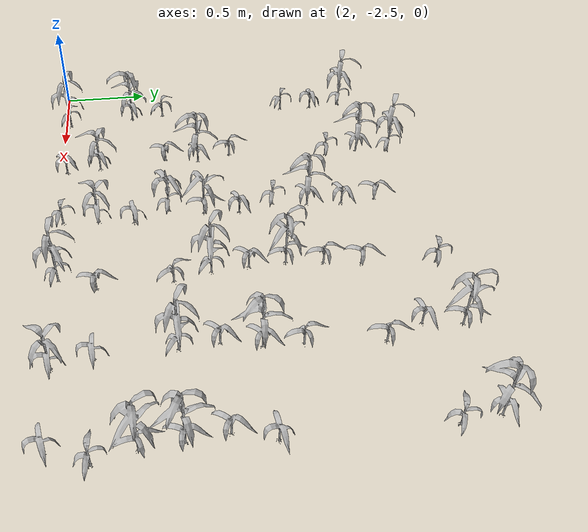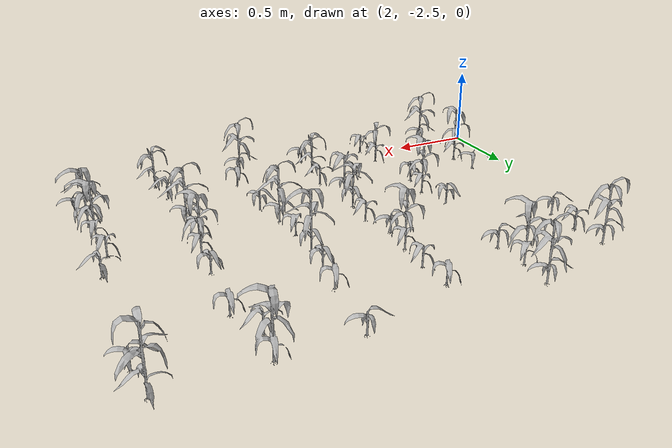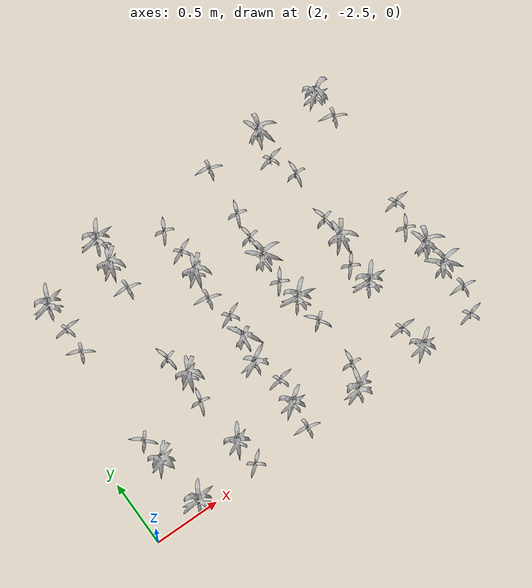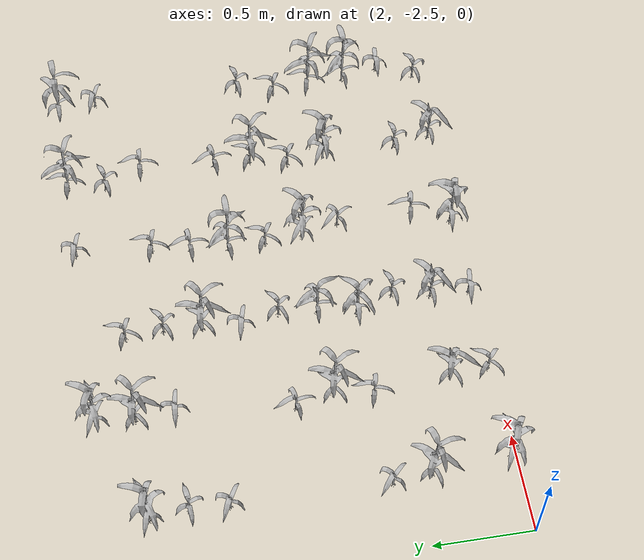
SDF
<sdf version="1.7">
 <world name="default">
  <model name="maize_2.3745121993031595_-2.46">
   <static>1</static>
   <link name="link">
    <inertial>
     <mass>0.2</mass>
     <inertia>
      <ixx>0.166667</ixx>
      <ixy>0</ixy>
      <ixz>0</ixz>
      <iyy>0.166667</iyy>
      <iyz>0</iyz>
      <izz>0.166667</izz>
     </inertia>
    </inertial>
    <collision name="collision">
     <geometry><mesh><uri>model://corn_5/meshes/corn.dae</uri><scale>0.25 0.25 0.25</scale></mesh></geometry>
     <surface>
      <friction><ode><mu>0</mu><mu2>0</mu2></ode></friction>
      <contact><ode><kp>0</kp><kd>0</kd><max_vel>0</max_vel><min_depth>0.002</min_depth></ode></contact>
     </surface>
    </collision>
    <visual name="visual">
     <geometry><mesh><uri>model://corn_5/meshes/corn.dae</uri><scale>0.25 0.25 0.25</scale></mesh></geometry>
    </visual>
    <velocity_decay><linear>0</linear><angular>0</angular></velocity_decay>
   </link>
   <pose>2.37451 -2.46 0.05 0 -0 2.75902</pose>
  </model>
  <model name="maize_2.337009474210957_-2.07">
   <static>1</static>
   <link name="link">
    <inertial>
     <mass>0.2</mass>
     <inertia>
      <ixx>0.166667</ixx>
      <ixy>0</ixy>
      <ixz>0</ixz>
      <iyy>0.166667</iyy>
      <iyz>0</iyz>
      <izz>0.166667</izz>
     </inertia>
    </inertial>
    <collision name="collision">
     <geometry><mesh><uri>model://corn_5/meshes/corn.dae</uri><scale>0.25 0.25 0.25</scale></mesh></geometry>
     <surface>
      <friction><ode><mu>0</mu><mu2>0</mu2></ode></friction>
      <contact><ode><kp>0</kp><kd>0</kd><max_vel>0</max_vel><min_depth>0.002</min_depth></ode></contact>
     </surface>
    </collision>
    <visual name="visual">
     <geometry><mesh><uri>model://corn_5/meshes/corn.dae</uri><scale>0.25 0.25 0.25</scale></mesh></geometry>
    </visual>
    <velocity_decay><linear>0</linear><angular>0</angular></velocity_decay>
   </link>
   <pose>2.33701 -2.07 0.05 0 -0 0.359599</pose>
  </model>
  <model name="maize_2.3219874058990166_-1.8749999999999996">
   <static>1</static>
   <link name="link">
    <inertial>
     <mass>0.2</mass>
     <inertia>
      <ixx>0.166667</ixx>
      <ixy>0</ixy>
      <ixz>0</ixz>
      <iyy>0.166667</iyy>
      <iyz>0</iyz>
      <izz>0.166667</izz>
     </inertia>
    </inertial>
    <collision name="collision">
     <geometry><mesh><uri>model://corn_3/meshes/corn.dae</uri><scale>0.25 0.25 0.25</scale></mesh></geometry>
     <surface>
      <friction><ode><mu>0</mu><mu2>0</mu2></ode></friction>
      <contact><ode><kp>0</kp><kd>0</kd><max_vel>0</max_vel><min_depth>0.002</min_depth></ode></contact>
     </surface>
    </collision>
    <visual name="visual">
     <geometry><mesh><uri>model://corn_3/meshes/corn.dae</uri><scale>0.25 0.25 0.25</scale></mesh></geometry>
    </visual>
    <velocity_decay><linear>0</linear><angular>0</angular></velocity_decay>
   </link>
   <pose>2.32199 -1.875 0.05 0 -0 2.43968</pose>
  </model>
  <model name="maize_2.3269847892570503_-1.0949999999999998">
   <static>1</static>
   <link name="link">
    <inertial>
     <mass>0.2</mass>
     <inertia>
      <ixx>0.166667</ixx>
      <ixy>0</ixy>
      <ixz>0</ixz>
      <iyy>0.166667</iyy>
      <iyz>0</iyz>
      <izz>0.166667</izz>
     </inertia>
    </inertial>
    <collision name="collision">
     <geometry><mesh><uri>model://corn_3/meshes/corn.dae</uri><scale>0.25 0.25 0.25</scale></mesh></geometry>
     <surface>
      <friction><ode><mu>0</mu><mu2>0</mu2></ode></friction>
      <contact><ode><kp>0</kp><kd>0</kd><max_vel>0</max_vel><min_depth>0.002</min_depth></ode></contact>
     </surface>
    </collision>
    <visual name="visual">
     <geometry><mesh><uri>model://corn_3/meshes/corn.dae</uri><scale>0.25 0.25 0.25</scale></mesh></geometry>
    </visual>
    <velocity_decay><linear>0</linear><angular>0</angular></velocity_decay>
   </link>
   <pose>2.32699 -1.095 0.05 0 -0 2.72049</pose>
  </model>
  <model name="maize_2.3359403123801172_-0.8999999999999995">
   <static>1</static>
   <link name="link">
    <inertial>
     <mass>0.2</mass>
     <inertia>
      <ixx>0.166667</ixx>
      <ixy>0</ixy>
      <ixz>0</ixz>
      <iyy>0.166667</iyy>
      <iyz>0</iyz>
      <izz>0.166667</izz>
     </inertia>
    </inertial>
    <collision name="collision">
     <geometry><mesh><uri>model://corn_3/meshes/corn.dae</uri><scale>0.25 0.25 0.25</scale></mesh></geometry>
     <surface>
      <friction><ode><mu>0</mu><mu2>0</mu2></ode></friction>
      <contact><ode><kp>0</kp><kd>0</kd><max_vel>0</max_vel><min_depth>0.002</min_depth></ode></contact>
     </surface>
    </collision>
    <visual name="visual">
     <geometry><mesh><uri>model://corn_3/meshes/corn.dae</uri><scale>0.25 0.25 0.25</scale></mesh></geometry>
    </visual>
    <velocity_decay><linear>0</linear><angular>0</angular></velocity_decay>
   </link>
   <pose>2.33594 -0.9 0.05 0 -0 0.162147</pose>
  </model>
  <model name="maize_2.319808523388343_-0.7050000000000001">
   <static>1</static>
   <link name="link">
    <inertial>
     <mass>0.2</mass>
     <inertia>
      <ixx>0.166667</ixx>
      <ixy>0</ixy>
      <ixz>0</ixz>
      <iyy>0.166667</iyy>
      <iyz>0</iyz>
      <izz>0.166667</izz>
     </inertia>
    </inertial>
    <collision name="collision">
     <geometry><mesh><uri>model://corn_5/meshes/corn.dae</uri><scale>0.25 0.25 0.25</scale></mesh></geometry>
     <surface>
      <friction><ode><mu>0</mu><mu2>0</mu2></ode></friction>
      <contact><ode><kp>0</kp><kd>0</kd><max_vel>0</max_vel><min_depth>0.002</min_depth></ode></contact>
     </surface>
    </collision>
    <visual name="visual">
     <geometry><mesh><uri>model://corn_5/meshes/corn.dae</uri><scale>0.25 0.25 0.25</scale></mesh></geometry>
    </visual>
    <velocity_decay><linear>0</linear><angular>0</angular></velocity_decay>
   </link>
   <pose>2.31981 -0.705 0.05 0 -0 2.89362</pose>
  </model>
  <model name="maize_2.859706268660767_-2.46">
   <static>1</static>
   <link name="link">
    <inertial>
     <mass>0.2</mass>
     <inertia>
      <ixx>0.166667</ixx>
      <ixy>0</ixy>
      <ixz>0</ixz>
      <iyy>0.166667</iyy>
      <iyz>0</iyz>
      <izz>0.166667</izz>
     </inertia>
    </inertial>
    <collision name="collision">
     <geometry><mesh><uri>model://corn_3/meshes/corn.dae</uri><scale>0.25 0.25 0.25</scale></mesh></geometry>
     <surface>
      <friction><ode><mu>0</mu><mu2>0</mu2></ode></friction>
      <contact><ode><kp>0</kp><kd>0</kd><max_vel>0</max_vel><min_depth>0.002</min_depth></ode></contact>
     </surface>
    </collision>
    <visual name="visual">
     <geometry><mesh><uri>model://corn_3/meshes/corn.dae</uri><scale>0.25 0.25 0.25</scale></mesh></geometry>
    </visual>
    <velocity_decay><linear>0</linear><angular>0</angular></velocity_decay>
   </link>
   <pose>2.85971 -2.46 0.05 0 -0 0.762967</pose>
  </model>
  <model name="maize_2.8430013032769814_-2.2649999999999997">
   <static>1</static>
   <link name="link">
    <inertial>
     <mass>0.2</mass>
     <inertia>
      <ixx>0.166667</ixx>
      <ixy>0</ixy>
      <ixz>0</ixz>
      <iyy>0.166667</iyy>
      <iyz>0</iyz>
      <izz>0.166667</izz>
     </inertia>
    </inertial>
    <collision name="collision">
     <geometry><mesh><uri>model://corn_4/meshes/corn.dae</uri><scale>0.25 0.25 0.25</scale></mesh></geometry>
     <surface>
      <friction><ode><mu>0</mu><mu2>0</mu2></ode></friction>
      <contact><ode><kp>0</kp><kd>0</kd><max_vel>0</max_vel><min_depth>0.002</min_depth></ode></contact>
     </surface>
    </collision>
    <visual name="visual">
     <geometry><mesh><uri>model://corn_4/meshes/corn.dae</uri><scale>0.25 0.25 0.25</scale></mesh></geometry>
    </visual>
    <velocity_decay><linear>0</linear><angular>0</angular></velocity_decay>
   </link>
   <pose>2.843 -2.265 0.05 0 -0 0.492577</pose>
  </model>
  <model name="maize_2.801666692448108_-1.8749999999999996">
   <static>1</static>
   <link name="link">
    <inertial>
     <mass>0.2</mass>
     <inertia>
      <ixx>0.166667</ixx>
      <ixy>0</ixy>
      <ixz>0</ixz>
      <iyy>0.166667</iyy>
      <iyz>0</iyz>
      <izz>0.166667</izz>
     </inertia>
    </inertial>
    <collision name="collision">
     <geometry><mesh><uri>model://corn_3/meshes/corn.dae</uri><scale>0.25 0.25 0.25</scale></mesh></geometry>
     <surface>
      <friction><ode><mu>0</mu><mu2>0</mu2></ode></friction>
      <contact><ode><kp>0</kp><kd>0</kd><max_vel>0</max_vel><min_depth>0.002</min_depth></ode></contact>
     </surface>
    </collision>
    <visual name="visual">
     <geometry><mesh><uri>model://corn_3/meshes/corn.dae</uri><scale>0.25 0.25 0.25</scale></mesh></geometry>
    </visual>
    <velocity_decay><linear>0</linear><angular>0</angular></velocity_decay>
   </link>
   <pose>2.80167 -1.875 0.05 0 -0 1.31832</pose>
  </model>
  <model name="maize_2.838154069388238_-1.6799999999999997">
   <static>1</static>
   <link name="link">
    <inertial>
     <mass>0.2</mass>
     <inertia>
      <ixx>0.166667</ixx>
      <ixy>0</ixy>
      <ixz>0</ixz>
      <iyy>0.166667</iyy>
      <iyz>0</iyz>
      <izz>0.166667</izz>
     </inertia>
    </inertial>
    <collision name="collision">
     <geometry><mesh><uri>model://corn_5/meshes/corn.dae</uri><scale>0.25 0.25 0.25</scale></mesh></geometry>
     <surface>
      <friction><ode><mu>0</mu><mu2>0</mu2></ode></friction>
      <contact><ode><kp>0</kp><kd>0</kd><max_vel>0</max_vel><min_depth>0.002</min_depth></ode></contact>
     </surface>
    </collision>
    <visual name="visual">
     <geometry><mesh><uri>model://corn_5/meshes/corn.dae</uri><scale>0.25 0.25 0.25</scale></mesh></geometry>
    </visual>
    <velocity_decay><linear>0</linear><angular>0</angular></velocity_decay>
   </link>
   <pose>2.83815 -1.68 0.05 0 -0 0.626257</pose>
  </model>
  <model name="maize_2.7905944077339457_-1.4849999999999999">
   <static>1</static>
   <link name="link">
    <inertial>
     <mass>0.2</mass>
     <inertia>
      <ixx>0.166667</ixx>
      <ixy>0</ixy>
      <ixz>0</ixz>
      <iyy>0.166667</iyy>
      <iyz>0</iyz>
      <izz>0.166667</izz>
     </inertia>
    </inertial>
    <collision name="collision">
     <geometry><mesh><uri>model://corn_3/meshes/corn.dae</uri><scale>0.25 0.25 0.25</scale></mesh></geometry>
     <surface>
      <friction><ode><mu>0</mu><mu2>0</mu2></ode></friction>
      <contact><ode><kp>0</kp><kd>0</kd><max_vel>0</max_vel><min_depth>0.002</min_depth></ode></contact>
     </surface>
    </collision>
    <visual name="visual">
     <geometry><mesh><uri>model://corn_3/meshes/corn.dae</uri><scale>0.25 0.25 0.25</scale></mesh></geometry>
    </visual>
    <velocity_decay><linear>0</linear><angular>0</angular></velocity_decay>
   </link>
   <pose>2.79059 -1.485 0.05 0 -0 1.79387</pose>
  </model>
  <model name="maize_2.858415155922808_-0.8999999999999995">
   <static>1</static>
   <link name="link">
    <inertial>
     <mass>0.2</mass>
     <inertia>
      <ixx>0.166667</ixx>
      <ixy>0</ixy>
      <ixz>0</ixz>
      <iyy>0.166667</iyy>
      <iyz>0</iyz>
      <izz>0.166667</izz>
     </inertia>
    </inertial>
    <collision name="collision">
     <geometry><mesh><uri>model://corn_3/meshes/corn.dae</uri><scale>0.25 0.25 0.25</scale></mesh></geometry>
     <surface>
      <friction><ode><mu>0</mu><mu2>0</mu2></ode></friction>
      <contact><ode><kp>0</kp><kd>0</kd><max_vel>0</max_vel><min_depth>0.002</min_depth></ode></contact>
     </surface>
    </collision>
    <visual name="visual">
     <geometry><mesh><uri>model://corn_3/meshes/corn.dae</uri><scale>0.25 0.25 0.25</scale></mesh></geometry>
    </visual>
    <velocity_decay><linear>0</linear><angular>0</angular></velocity_decay>
   </link>
   <pose>2.85841 -0.9 0.05 0 -0 3.08257</pose>
  </model>
  <model name="maize_2.843995130802933_-0.7050000000000001">
   <static>1</static>
   <link name="link">
    <inertial>
     <mass>0.2</mass>
     <inertia>
      <ixx>0.166667</ixx>
      <ixy>0</ixy>
      <ixz>0</ixz>
      <iyy>0.166667</iyy>
      <iyz>0</iyz>
      <izz>0.166667</izz>
     </inertia>
    </inertial>
    <collision name="collision">
     <geometry><mesh><uri>model://corn_5/meshes/corn.dae</uri><scale>0.25 0.25 0.25</scale></mesh></geometry>
     <surface>
      <friction><ode><mu>0</mu><mu2>0</mu2></ode></friction>
      <contact><ode><kp>0</kp><kd>0</kd><max_vel>0</max_vel><min_depth>0.002</min_depth></ode></contact>
     </surface>
    </collision>
    <visual name="visual">
     <geometry><mesh><uri>model://corn_5/meshes/corn.dae</uri><scale>0.25 0.25 0.25</scale></mesh></geometry>
    </visual>
    <velocity_decay><linear>0</linear><angular>0</angular></velocity_decay>
   </link>
   <pose>2.844 -0.705 0.05 0 -0 0.699195</pose>
  </model>
  <model name="maize_2.865273128333726_-0.5099999999999998">
   <static>1</static>
   <link name="link">
    <inertial>
     <mass>0.2</mass>
     <inertia>
      <ixx>0.166667</ixx>
      <ixy>0</ixy>
      <ixz>0</ixz>
      <iyy>0.166667</iyy>
      <iyz>0</iyz>
      <izz>0.166667</izz>
     </inertia>
    </inertial>
    <collision name="collision">
     <geometry><mesh><uri>model://corn_5/meshes/corn.dae</uri><scale>0.25 0.25 0.25</scale></mesh></geometry>
     <surface>
      <friction><ode><mu>0</mu><mu2>0</mu2></ode></friction>
      <contact><ode><kp>0</kp><kd>0</kd><max_vel>0</max_vel><min_depth>0.002</min_depth></ode></contact>
     </surface>
    </collision>
    <visual name="visual">
     <geometry><mesh><uri>model://corn_5/meshes/corn.dae</uri><scale>0.25 0.25 0.25</scale></mesh></geometry>
    </visual>
    <velocity_decay><linear>0</linear><angular>0</angular></velocity_decay>
   </link>
   <pose>2.86527 -0.51 0.05 0 -0 2.74256</pose>
  </model>
  <model name="maize_3.3085864993313625_-2.46">
   <static>1</static>
   <link name="link">
    <inertial>
     <mass>0.2</mass>
     <inertia>
      <ixx>0.166667</ixx>
      <ixy>0</ixy>
      <ixz>0</ixz>
      <iyy>0.166667</iyy>
      <iyz>0</iyz>
      <izz>0.166667</izz>
     </inertia>
    </inertial>
    <collision name="collision">
     <geometry><mesh><uri>model://corn_3/meshes/corn.dae</uri><scale>0.25 0.25 0.25</scale></mesh></geometry>
     <surface>
      <friction><ode><mu>0</mu><mu2>0</mu2></ode></friction>
      <contact><ode><kp>0</kp><kd>0</kd><max_vel>0</max_vel><min_depth>0.002</min_depth></ode></contact>
     </surface>
    </collision>
    <visual name="visual">
     <geometry><mesh><uri>model://corn_3/meshes/corn.dae</uri><scale>0.25 0.25 0.25</scale></mesh></geometry>
    </visual>
    <velocity_decay><linear>0</linear><angular>0</angular></velocity_decay>
   </link>
   <pose>3.30859 -2.46 0.05 0 -0 3.05027</pose>
  </model>
  <model name="maize_3.3168595729130326_-2.2649999999999997">
   <static>1</static>
   <link name="link">
    <inertial>
     <mass>0.2</mass>
     <inertia>
      <ixx>0.166667</ixx>
      <ixy>0</ixy>
      <ixz>0</ixz>
      <iyy>0.166667</iyy>
      <iyz>0</iyz>
      <izz>0.166667</izz>
     </inertia>
    </inertial>
    <collision name="collision">
     <geometry><mesh><uri>model://corn_4/meshes/corn.dae</uri><scale>0.25 0.25 0.25</scale></mesh></geometry>
     <surface>
      <friction><ode><mu>0</mu><mu2>0</mu2></ode></friction>
      <contact><ode><kp>0</kp><kd>0</kd><max_vel>0</max_vel><min_depth>0.002</min_depth></ode></contact>
     </surface>
    </collision>
    <visual name="visual">
     <geometry><mesh><uri>model://corn_4/meshes/corn.dae</uri><scale>0.25 0.25 0.25</scale></mesh></geometry>
    </visual>
    <velocity_decay><linear>0</linear><angular>0</angular></velocity_decay>
   </link>
   <pose>3.31686 -2.265 0.05 0 -0 0.116008</pose>
  </model>
  <model name="maize_3.3490102340632735_-2.07">
   <static>1</static>
   <link name="link">
    <inertial>
     <mass>0.2</mass>
     <inertia>
      <ixx>0.166667</ixx>
      <ixy>0</ixy>
      <ixz>0</ixz>
      <iyy>0.166667</iyy>
      <iyz>0</iyz>
      <izz>0.166667</izz>
     </inertia>
    </inertial>
    <collision name="collision">
     <geometry><mesh><uri>model://corn_3/meshes/corn.dae</uri><scale>0.25 0.25 0.25</scale></mesh></geometry>
     <surface>
      <friction><ode><mu>0</mu><mu2>0</mu2></ode></friction>
      <contact><ode><kp>0</kp><kd>0</kd><max_vel>0</max_vel><min_depth>0.002</min_depth></ode></contact>
     </surface>
    </collision>
    <visual name="visual">
     <geometry><mesh><uri>model://corn_3/meshes/corn.dae</uri><scale>0.25 0.25 0.25</scale></mesh></geometry>
    </visual>
    <velocity_decay><linear>0</linear><angular>0</angular></velocity_decay>
   </link>
   <pose>3.34901 -2.07 0.05 0 -0 0.238777</pose>
  </model>
  <model name="maize_3.2725498330886054_-1.8749999999999996">
   <static>1</static>
   <link name="link">
    <inertial>
     <mass>0.2</mass>
     <inertia>
      <ixx>0.166667</ixx>
      <ixy>0</ixy>
      <ixz>0</ixz>
      <iyy>0.166667</iyy>
      <iyz>0</iyz>
      <izz>0.166667</izz>
     </inertia>
    </inertial>
    <collision name="collision">
     <geometry><mesh><uri>model://corn_4/meshes/corn.dae</uri><scale>0.25 0.25 0.25</scale></mesh></geometry>
     <surface>
      <friction><ode><mu>0</mu><mu2>0</mu2></ode></friction>
      <contact><ode><kp>0</kp><kd>0</kd><max_vel>0</max_vel><min_depth>0.002</min_depth></ode></contact>
     </surface>
    </collision>
    <visual name="visual">
     <geometry><mesh><uri>model://corn_4/meshes/corn.dae</uri><scale>0.25 0.25 0.25</scale></mesh></geometry>
    </visual>
    <velocity_decay><linear>0</linear><angular>0</angular></velocity_decay>
   </link>
   <pose>3.27255 -1.875 0.05 0 -0 3.12138</pose>
  </model>
  <model name="maize_3.3143885854204416_-1.6799999999999997">
   <static>1</static>
   <link name="link">
    <inertial>
     <mass>0.2</mass>
     <inertia>
      <ixx>0.166667</ixx>
      <ixy>0</ixy>
      <ixz>0</ixz>
      <iyy>0.166667</iyy>
      <iyz>0</iyz>
      <izz>0.166667</izz>
     </inertia>
    </inertial>
    <collision name="collision">
     <geometry><mesh><uri>model://corn_4/meshes/corn.dae</uri><scale>0.25 0.25 0.25</scale></mesh></geometry>
     <surface>
      <friction><ode><mu>0</mu><mu2>0</mu2></ode></friction>
      <contact><ode><kp>0</kp><kd>0</kd><max_vel>0</max_vel><min_depth>0.002</min_depth></ode></contact>
     </surface>
    </collision>
    <visual name="visual">
     <geometry><mesh><uri>model://corn_4/meshes/corn.dae</uri><scale>0.25 0.25 0.25</scale></mesh></geometry>
    </visual>
    <velocity_decay><linear>0</linear><angular>0</angular></velocity_decay>
   </link>
   <pose>3.31439 -1.68 0.05 0 -0 1.56862</pose>
  </model>
  <model name="maize_3.3319973141463937_-1.4849999999999999">
   <static>1</static>
   <link name="link">
    <inertial>
     <mass>0.2</mass>
     <inertia>
      <ixx>0.166667</ixx>
      <ixy>0</ixy>
      <ixz>0</ixz>
      <iyy>0.166667</iyy>
      <iyz>0</iyz>
      <izz>0.166667</izz>
     </inertia>
    </inertial>
    <collision name="collision">
     <geometry><mesh><uri>model://corn_3/meshes/corn.dae</uri><scale>0.25 0.25 0.25</scale></mesh></geometry>
     <surface>
      <friction><ode><mu>0</mu><mu2>0</mu2></ode></friction>
      <contact><ode><kp>0</kp><kd>0</kd><max_vel>0</max_vel><min_depth>0.002</min_depth></ode></contact>
     </surface>
    </collision>
    <visual name="visual">
     <geometry><mesh><uri>model://corn_3/meshes/corn.dae</uri><scale>0.25 0.25 0.25</scale></mesh></geometry>
    </visual>
    <velocity_decay><linear>0</linear><angular>0</angular></velocity_decay>
   </link>
   <pose>3.332 -1.485 0.05 0 -0 0.493939</pose>
  </model>
  <model name="maize_3.279451340140451_-1.2899999999999996">
   <static>1</static>
   <link name="link">
    <inertial>
     <mass>0.2</mass>
     <inertia>
      <ixx>0.166667</ixx>
      <ixy>0</ixy>
      <ixz>0</ixz>
      <iyy>0.166667</iyy>
      <iyz>0</iyz>
      <izz>0.166667</izz>
     </inertia>
    </inertial>
    <collision name="collision">
     <geometry><mesh><uri>model://corn_3/meshes/corn.dae</uri><scale>0.25 0.25 0.25</scale></mesh></geometry>
     <surface>
      <friction><ode><mu>0</mu><mu2>0</mu2></ode></friction>
      <contact><ode><kp>0</kp><kd>0</kd><max_vel>0</max_vel><min_depth>0.002</min_depth></ode></contact>
     </surface>
    </collision>
    <visual name="visual">
     <geometry><mesh><uri>model://corn_3/meshes/corn.dae</uri><scale>0.25 0.25 0.25</scale></mesh></geometry>
    </visual>
    <velocity_decay><linear>0</linear><angular>0</angular></velocity_decay>
   </link>
   <pose>3.27945 -1.29 0.05 0 -0 2.97465</pose>
  </model>
  <model name="maize_3.3064769161184877_-1.0949999999999998">
   <static>1</static>
   <link name="link">
    <inertial>
     <mass>0.2</mass>
     <inertia>
      <ixx>0.166667</ixx>
      <ixy>0</ixy>
      <ixz>0</ixz>
      <iyy>0.166667</iyy>
      <iyz>0</iyz>
      <izz>0.166667</izz>
     </inertia>
    </inertial>
    <collision name="collision">
     <geometry><mesh><uri>model://corn_5/meshes/corn.dae</uri><scale>0.25 0.25 0.25</scale></mesh></geometry>
     <surface>
      <friction><ode><mu>0</mu><mu2>0</mu2></ode></friction>
      <contact><ode><kp>0</kp><kd>0</kd><max_vel>0</max_vel><min_depth>0.002</min_depth></ode></contact>
     </surface>
    </collision>
    <visual name="visual">
     <geometry><mesh><uri>model://corn_5/meshes/corn.dae</uri><scale>0.25 0.25 0.25</scale></mesh></geometry>
    </visual>
    <velocity_decay><linear>0</linear><angular>0</angular></velocity_decay>
   </link>
   <pose>3.30648 -1.095 0.05 0 -0 0.704149</pose>
  </model>
  <model name="maize_3.3212073003964075_-0.8999999999999995">
   <static>1</static>
   <link name="link">
    <inertial>
     <mass>0.2</mass>
     <inertia>
      <ixx>0.166667</ixx>
      <ixy>0</ixy>
      <ixz>0</ixz>
      <iyy>0.166667</iyy>
      <iyz>0</iyz>
      <izz>0.166667</izz>
     </inertia>
    </inertial>
    <collision name="collision">
     <geometry><mesh><uri>model://corn_3/meshes/corn.dae</uri><scale>0.25 0.25 0.25</scale></mesh></geometry>
     <surface>
      <friction><ode><mu>0</mu><mu2>0</mu2></ode></friction>
      <contact><ode><kp>0</kp><kd>0</kd><max_vel>0</max_vel><min_depth>0.002</min_depth></ode></contact>
     </surface>
    </collision>
    <visual name="visual">
     <geometry><mesh><uri>model://corn_3/meshes/corn.dae</uri><scale>0.25 0.25 0.25</scale></mesh></geometry>
    </visual>
    <velocity_decay><linear>0</linear><angular>0</angular></velocity_decay>
   </link>
   <pose>3.32121 -0.9 0.05 0 -0 0.511982</pose>
  </model>
  <model name="maize_3.308079867065838_-0.7050000000000001">
   <static>1</static>
   <link name="link">
    <inertial>
     <mass>0.2</mass>
     <inertia>
      <ixx>0.166667</ixx>
      <ixy>0</ixy>
      <ixz>0</ixz>
      <iyy>0.166667</iyy>
      <iyz>0</iyz>
      <izz>0.166667</izz>
     </inertia>
    </inertial>
    <collision name="collision">
     <geometry><mesh><uri>model://corn_3/meshes/corn.dae</uri><scale>0.25 0.25 0.25</scale></mesh></geometry>
     <surface>
      <friction><ode><mu>0</mu><mu2>0</mu2></ode></friction>
      <contact><ode><kp>0</kp><kd>0</kd><max_vel>0</max_vel><min_depth>0.002</min_depth></ode></contact>
     </surface>
    </collision>
    <visual name="visual">
     <geometry><mesh><uri>model://corn_3/meshes/corn.dae</uri><scale>0.25 0.25 0.25</scale></mesh></geometry>
    </visual>
    <velocity_decay><linear>0</linear><angular>0</angular></velocity_decay>
   </link>
   <pose>3.30808 -0.705 0.05 0 -0 1.1177</pose>
  </model>
  <model name="maize_3.746947455450427_-2.46">
   <static>1</static>
   <link name="link">
    <inertial>
     <mass>0.2</mass>
     <inertia>
      <ixx>0.166667</ixx>
      <ixy>0</ixy>
      <ixz>0</ixz>
      <iyy>0.166667</iyy>
      <iyz>0</iyz>
      <izz>0.166667</izz>
     </inertia>
    </inertial>
    <collision name="collision">
     <geometry><mesh><uri>model://corn_5/meshes/corn.dae</uri><scale>0.25 0.25 0.25</scale></mesh></geometry>
     <surface>
      <friction><ode><mu>0</mu><mu2>0</mu2></ode></friction>
      <contact><ode><kp>0</kp><kd>0</kd><max_vel>0</max_vel><min_depth>0.002</min_depth></ode></contact>
     </surface>
    </collision>
    <visual name="visual">
     <geometry><mesh><uri>model://corn_5/meshes/corn.dae</uri><scale>0.25 0.25 0.25</scale></mesh></geometry>
    </visual>
    <velocity_decay><linear>0</linear><angular>0</angular></velocity_decay>
   </link>
   <pose>3.74695 -2.46 0.05 0 -0 3.04043</pose>
  </model>
  <model name="maize_3.8294303928048743_-2.2649999999999997">
   <static>1</static>
   <link name="link">
    <inertial>
     <mass>0.2</mass>
     <inertia>
      <ixx>0.166667</ixx>
      <ixy>0</ixy>
      <ixz>0</ixz>
      <iyy>0.166667</iyy>
      <iyz>0</iyz>
      <izz>0.166667</izz>
     </inertia>
    </inertial>
    <collision name="collision">
     <geometry><mesh><uri>model://corn_3/meshes/corn.dae</uri><scale>0.25 0.25 0.25</scale></mesh></geometry>
     <surface>
      <friction><ode><mu>0</mu><mu2>0</mu2></ode></friction>
      <contact><ode><kp>0</kp><kd>0</kd><max_vel>0</max_vel><min_depth>0.002</min_depth></ode></contact>
     </surface>
    </collision>
    <visual name="visual">
     <geometry><mesh><uri>model://corn_3/meshes/corn.dae</uri><scale>0.25 0.25 0.25</scale></mesh></geometry>
    </visual>
    <velocity_decay><linear>0</linear><angular>0</angular></velocity_decay>
   </link>
   <pose>3.82943 -2.265 0.05 0 -0 1.41485</pose>
  </model>
  <model name="maize_3.8232007034785895_-1.8749999999999996">
   <static>1</static>
   <link name="link">
    <inertial>
     <mass>0.2</mass>
     <inertia>
      <ixx>0.166667</ixx>
      <ixy>0</ixy>
      <ixz>0</ixz>
      <iyy>0.166667</iyy>
      <iyz>0</iyz>
      <izz>0.166667</izz>
     </inertia>
    </inertial>
    <collision name="collision">
     <geometry><mesh><uri>model://corn_3/meshes/corn.dae</uri><scale>0.25 0.25 0.25</scale></mesh></geometry>
     <surface>
      <friction><ode><mu>0</mu><mu2>0</mu2></ode></friction>
      <contact><ode><kp>0</kp><kd>0</kd><max_vel>0</max_vel><min_depth>0.002</min_depth></ode></contact>
     </surface>
    </collision>
    <visual name="visual">
     <geometry><mesh><uri>model://corn_3/meshes/corn.dae</uri><scale>0.25 0.25 0.25</scale></mesh></geometry>
    </visual>
    <velocity_decay><linear>0</linear><angular>0</angular></velocity_decay>
   </link>
   <pose>3.8232 -1.875 0.05 0 -0 2.21121</pose>
  </model>
  <model name="maize_3.776983763760082_-1.6799999999999997">
   <static>1</static>
   <link name="link">
    <inertial>
     <mass>0.2</mass>
     <inertia>
      <ixx>0.166667</ixx>
      <ixy>0</ixy>
      <ixz>0</ixz>
      <iyy>0.166667</iyy>
      <iyz>0</iyz>
      <izz>0.166667</izz>
     </inertia>
    </inertial>
    <collision name="collision">
     <geometry><mesh><uri>model://corn_5/meshes/corn.dae</uri><scale>0.25 0.25 0.25</scale></mesh></geometry>
     <surface>
      <friction><ode><mu>0</mu><mu2>0</mu2></ode></friction>
      <contact><ode><kp>0</kp><kd>0</kd><max_vel>0</max_vel><min_depth>0.002</min_depth></ode></contact>
     </surface>
    </collision>
    <visual name="visual">
     <geometry><mesh><uri>model://corn_5/meshes/corn.dae</uri><scale>0.25 0.25 0.25</scale></mesh></geometry>
    </visual>
    <velocity_decay><linear>0</linear><angular>0</angular></velocity_decay>
   </link>
   <pose>3.77698 -1.68 0.05 0 -0 2.48229</pose>
  </model>
  <model name="maize_3.7609182484668855_-1.4849999999999999">
   <static>1</static>
   <link name="link">
    <inertial>
     <mass>0.2</mass>
     <inertia>
      <ixx>0.166667</ixx>
      <ixy>0</ixy>
      <ixz>0</ixz>
      <iyy>0.166667</iyy>
      <iyz>0</iyz>
      <izz>0.166667</izz>
     </inertia>
    </inertial>
    <collision name="collision">
     <geometry><mesh><uri>model://corn_3/meshes/corn.dae</uri><scale>0.25 0.25 0.25</scale></mesh></geometry>
     <surface>
      <friction><ode><mu>0</mu><mu2>0</mu2></ode></friction>
      <contact><ode><kp>0</kp><kd>0</kd><max_vel>0</max_vel><min_depth>0.002</min_depth></ode></contact>
     </surface>
    </collision>
    <visual name="visual">
     <geometry><mesh><uri>model://corn_3/meshes/corn.dae</uri><scale>0.25 0.25 0.25</scale></mesh></geometry>
    </visual>
    <velocity_decay><linear>0</linear><angular>0</angular></velocity_decay>
   </link>
   <pose>3.76092 -1.485 0.05 0 -0 0.98891</pose>
  </model>
  <model name="maize_3.7547744639403517_-1.2899999999999996">
   <static>1</static>
   <link name="link">
    <inertial>
     <mass>0.2</mass>
     <inertia>
      <ixx>0.166667</ixx>
      <ixy>0</ixy>
      <ixz>0</ixz>
      <iyy>0.166667</iyy>
      <iyz>0</iyz>
      <izz>0.166667</izz>
     </inertia>
    </inertial>
    <collision name="collision">
     <geometry><mesh><uri>model://corn_5/meshes/corn.dae</uri><scale>0.25 0.25 0.25</scale></mesh></geometry>
     <surface>
      <friction><ode><mu>0</mu><mu2>0</mu2></ode></friction>
      <contact><ode><kp>0</kp><kd>0</kd><max_vel>0</max_vel><min_depth>0.002</min_depth></ode></contact>
     </surface>
    </collision>
    <visual name="visual">
     <geometry><mesh><uri>model://corn_5/meshes/corn.dae</uri><scale>0.25 0.25 0.25</scale></mesh></geometry>
    </visual>
    <velocity_decay><linear>0</linear><angular>0</angular></velocity_decay>
   </link>
   <pose>3.75477 -1.29 0.05 0 -0 1.75698</pose>
  </model>
  <model name="maize_3.7798172440257467_-1.0949999999999998">
   <static>1</static>
   <link name="link">
    <inertial>
     <mass>0.2</mass>
     <inertia>
      <ixx>0.166667</ixx>
      <ixy>0</ixy>
      <ixz>0</ixz>
      <iyy>0.166667</iyy>
      <iyz>0</iyz>
      <izz>0.166667</izz>
     </inertia>
    </inertial>
    <collision name="collision">
     <geometry><mesh><uri>model://corn_3/meshes/corn.dae</uri><scale>0.25 0.25 0.25</scale></mesh></geometry>
     <surface>
      <friction><ode><mu>0</mu><mu2>0</mu2></ode></friction>
      <contact><ode><kp>0</kp><kd>0</kd><max_vel>0</max_vel><min_depth>0.002</min_depth></ode></contact>
     </surface>
    </collision>
    <visual name="visual">
     <geometry><mesh><uri>model://corn_3/meshes/corn.dae</uri><scale>0.25 0.25 0.25</scale></mesh></geometry>
    </visual>
    <velocity_decay><linear>0</linear><angular>0</angular></velocity_decay>
   </link>
   <pose>3.77982 -1.095 0.05 0 -0 1.65319</pose>
  </model>
  <model name="maize_3.806818676191995_-0.8999999999999995">
   <static>1</static>
   <link name="link">
    <inertial>
     <mass>0.2</mass>
     <inertia>
      <ixx>0.166667</ixx>
      <ixy>0</ixy>
      <ixz>0</ixz>
      <iyy>0.166667</iyy>
      <iyz>0</iyz>
      <izz>0.166667</izz>
     </inertia>
    </inertial>
    <collision name="collision">
     <geometry><mesh><uri>model://corn_3/meshes/corn.dae</uri><scale>0.25 0.25 0.25</scale></mesh></geometry>
     <surface>
      <friction><ode><mu>0</mu><mu2>0</mu2></ode></friction>
      <contact><ode><kp>0</kp><kd>0</kd><max_vel>0</max_vel><min_depth>0.002</min_depth></ode></contact>
     </surface>
    </collision>
    <visual name="visual">
     <geometry><mesh><uri>model://corn_3/meshes/corn.dae</uri><scale>0.25 0.25 0.25</scale></mesh></geometry>
    </visual>
    <velocity_decay><linear>0</linear><angular>0</angular></velocity_decay>
   </link>
   <pose>3.80682 -0.9 0.05 0 -0 1.2434</pose>
  </model>
  <model name="maize_3.8413584190460806_-0.5099999999999998">
   <static>1</static>
   <link name="link">
    <inertial>
     <mass>0.2</mass>
     <inertia>
      <ixx>0.166667</ixx>
      <ixy>0</ixy>
      <ixz>0</ixz>
      <iyy>0.166667</iyy>
      <iyz>0</iyz>
      <izz>0.166667</izz>
     </inertia>
    </inertial>
    <collision name="collision">
     <geometry><mesh><uri>model://corn_3/meshes/corn.dae</uri><scale>0.25 0.25 0.25</scale></mesh></geometry>
     <surface>
      <friction><ode><mu>0</mu><mu2>0</mu2></ode></friction>
      <contact><ode><kp>0</kp><kd>0</kd><max_vel>0</max_vel><min_depth>0.002</min_depth></ode></contact>
     </surface>
    </collision>
    <visual name="visual">
     <geometry><mesh><uri>model://corn_3/meshes/corn.dae</uri><scale>0.25 0.25 0.25</scale></mesh></geometry>
    </visual>
    <velocity_decay><linear>0</linear><angular>0</angular></velocity_decay>
   </link>
   <pose>3.84136 -0.51 0.05 0 -0 2.95369</pose>
  </model>
  <model name="maize_4.303129702913964_-2.46">
   <static>1</static>
   <link name="link">
    <inertial>
     <mass>0.2</mass>
     <inertia>
      <ixx>0.166667</ixx>
      <ixy>0</ixy>
      <ixz>0</ixz>
      <iyy>0.166667</iyy>
      <iyz>0</iyz>
      <izz>0.166667</izz>
     </inertia>
    </inertial>
    <collision name="collision">
     <geometry><mesh><uri>model://corn_4/meshes/corn.dae</uri><scale>0.25 0.25 0.25</scale></mesh></geometry>
     <surface>
      <friction><ode><mu>0</mu><mu2>0</mu2></ode></friction>
      <contact><ode><kp>0</kp><kd>0</kd><max_vel>0</max_vel><min_depth>0.002</min_depth></ode></contact>
     </surface>
    </collision>
    <visual name="visual">
     <geometry><mesh><uri>model://corn_4/meshes/corn.dae</uri><scale>0.25 0.25 0.25</scale></mesh></geometry>
    </visual>
    <velocity_decay><linear>0</linear><angular>0</angular></velocity_decay>
   </link>
   <pose>4.30313 -2.46 0.05 0 -0 0.154713</pose>
  </model>
  <model name="maize_4.269158120956461_-2.2649999999999997">
   <static>1</static>
   <link name="link">
    <inertial>
     <mass>0.2</mass>
     <inertia>
      <ixx>0.166667</ixx>
      <ixy>0</ixy>
      <ixz>0</ixz>
      <iyy>0.166667</iyy>
      <iyz>0</iyz>
      <izz>0.166667</izz>
     </inertia>
    </inertial>
    <collision name="collision">
     <geometry><mesh><uri>model://corn_3/meshes/corn.dae</uri><scale>0.25 0.25 0.25</scale></mesh></geometry>
     <surface>
      <friction><ode><mu>0</mu><mu2>0</mu2></ode></friction>
      <contact><ode><kp>0</kp><kd>0</kd><max_vel>0</max_vel><min_depth>0.002</min_depth></ode></contact>
     </surface>
    </collision>
    <visual name="visual">
     <geometry><mesh><uri>model://corn_3/meshes/corn.dae</uri><scale>0.25 0.25 0.25</scale></mesh></geometry>
    </visual>
    <velocity_decay><linear>0</linear><angular>0</angular></velocity_decay>
   </link>
   <pose>4.26916 -2.265 0.05 0 -0 0.111703</pose>
  </model>
  <model name="maize_4.257292201681159_-1.8749999999999996">
   <static>1</static>
   <link name="link">
    <inertial>
     <mass>0.2</mass>
     <inertia>
      <ixx>0.166667</ixx>
      <ixy>0</ixy>
      <ixz>0</ixz>
      <iyy>0.166667</iyy>
      <iyz>0</iyz>
      <izz>0.166667</izz>
     </inertia>
    </inertial>
    <collision name="collision">
     <geometry><mesh><uri>model://corn_5/meshes/corn.dae</uri><scale>0.25 0.25 0.25</scale></mesh></geometry>
     <surface>
      <friction><ode><mu>0</mu><mu2>0</mu2></ode></friction>
      <contact><ode><kp>0</kp><kd>0</kd><max_vel>0</max_vel><min_depth>0.002</min_depth></ode></contact>
     </surface>
    </collision>
    <visual name="visual">
     <geometry><mesh><uri>model://corn_5/meshes/corn.dae</uri><scale>0.25 0.25 0.25</scale></mesh></geometry>
    </visual>
    <velocity_decay><linear>0</linear><angular>0</angular></velocity_decay>
   </link>
   <pose>4.25729 -1.875 0.05 0 -0 2.61434</pose>
  </model>
  <model name="maize_4.2417165020190986_-1.6799999999999997">
   <static>1</static>
   <link name="link">
    <inertial>
     <mass>0.2</mass>
     <inertia>
      <ixx>0.166667</ixx>
      <ixy>0</ixy>
      <ixz>0</ixz>
      <iyy>0.166667</iyy>
      <iyz>0</iyz>
      <izz>0.166667</izz>
     </inertia>
    </inertial>
    <collision name="collision">
     <geometry><mesh><uri>model://corn_3/meshes/corn.dae</uri><scale>0.25 0.25 0.25</scale></mesh></geometry>
     <surface>
      <friction><ode><mu>0</mu><mu2>0</mu2></ode></friction>
      <contact><ode><kp>0</kp><kd>0</kd><max_vel>0</max_vel><min_depth>0.002</min_depth></ode></contact>
     </surface>
    </collision>
    <visual name="visual">
     <geometry><mesh><uri>model://corn_3/meshes/corn.dae</uri><scale>0.25 0.25 0.25</scale></mesh></geometry>
    </visual>
    <velocity_decay><linear>0</linear><angular>0</angular></velocity_decay>
   </link>
   <pose>4.24172 -1.68 0.05 0 -0 0.940807</pose>
  </model>
  <model name="maize_4.284672586065857_-1.4849999999999999">
   <static>1</static>
   <link name="link">
    <inertial>
     <mass>0.2</mass>
     <inertia>
      <ixx>0.166667</ixx>
      <ixy>0</ixy>
      <ixz>0</ixz>
      <iyy>0.166667</iyy>
      <iyz>0</iyz>
      <izz>0.166667</izz>
     </inertia>
    </inertial>
    <collision name="collision">
     <geometry><mesh><uri>model://corn_5/meshes/corn.dae</uri><scale>0.25 0.25 0.25</scale></mesh></geometry>
     <surface>
      <friction><ode><mu>0</mu><mu2>0</mu2></ode></friction>
      <contact><ode><kp>0</kp><kd>0</kd><max_vel>0</max_vel><min_depth>0.002</min_depth></ode></contact>
     </surface>
    </collision>
    <visual name="visual">
     <geometry><mesh><uri>model://corn_5/meshes/corn.dae</uri><scale>0.25 0.25 0.25</scale></mesh></geometry>
    </visual>
    <velocity_decay><linear>0</linear><angular>0</angular></velocity_decay>
   </link>
   <pose>4.28467 -1.485 0.05 0 -0 0.91722</pose>
  </model>
  <model name="maize_4.293211517355047_-1.2899999999999996">
   <static>1</static>
   <link name="link">
    <inertial>
     <mass>0.2</mass>
     <inertia>
      <ixx>0.166667</ixx>
      <ixy>0</ixy>
      <ixz>0</ixz>
      <iyy>0.166667</iyy>
      <iyz>0</iyz>
      <izz>0.166667</izz>
     </inertia>
    </inertial>
    <collision name="collision">
     <geometry><mesh><uri>model://corn_3/meshes/corn.dae</uri><scale>0.25 0.25 0.25</scale></mesh></geometry>
     <surface>
      <friction><ode><mu>0</mu><mu2>0</mu2></ode></friction>
      <contact><ode><kp>0</kp><kd>0</kd><max_vel>0</max_vel><min_depth>0.002</min_depth></ode></contact>
     </surface>
    </collision>
    <visual name="visual">
     <geometry><mesh><uri>model://corn_3/meshes/corn.dae</uri><scale>0.25 0.25 0.25</scale></mesh></geometry>
    </visual>
    <velocity_decay><linear>0</linear><angular>0</angular></velocity_decay>
   </link>
   <pose>4.29321 -1.29 0.05 0 -0 1.77489</pose>
  </model>
  <model name="maize_4.323565324635702_-0.8999999999999995">
   <static>1</static>
   <link name="link">
    <inertial>
     <mass>0.2</mass>
     <inertia>
      <ixx>0.166667</ixx>
      <ixy>0</ixy>
      <ixz>0</ixz>
      <iyy>0.166667</iyy>
      <iyz>0</iyz>
      <izz>0.166667</izz>
     </inertia>
    </inertial>
    <collision name="collision">
     <geometry><mesh><uri>model://corn_3/meshes/corn.dae</uri><scale>0.25 0.25 0.25</scale></mesh></geometry>
     <surface>
      <friction><ode><mu>0</mu><mu2>0</mu2></ode></friction>
      <contact><ode><kp>0</kp><kd>0</kd><max_vel>0</max_vel><min_depth>0.002</min_depth></ode></contact>
     </surface>
    </collision>
    <visual name="visual">
     <geometry><mesh><uri>model://corn_3/meshes/corn.dae</uri><scale>0.25 0.25 0.25</scale></mesh></geometry>
    </visual>
    <velocity_decay><linear>0</linear><angular>0</angular></velocity_decay>
   </link>
   <pose>4.32357 -0.9 0.05 0 -0 1.46948</pose>
  </model>
  <model name="maize_4.23757706677893_-0.7050000000000001">
   <static>1</static>
   <link name="link">
    <inertial>
     <mass>0.2</mass>
     <inertia>
      <ixx>0.166667</ixx>
      <ixy>0</ixy>
      <ixz>0</ixz>
      <iyy>0.166667</iyy>
      <iyz>0</iyz>
      <izz>0.166667</izz>
     </inertia>
    </inertial>
    <collision name="collision">
     <geometry><mesh><uri>model://corn_3/meshes/corn.dae</uri><scale>0.25 0.25 0.25</scale></mesh></geometry>
     <surface>
      <friction><ode><mu>0</mu><mu2>0</mu2></ode></friction>
      <contact><ode><kp>0</kp><kd>0</kd><max_vel>0</max_vel><min_depth>0.002</min_depth></ode></contact>
     </surface>
    </collision>
    <visual name="visual">
     <geometry><mesh><uri>model://corn_3/meshes/corn.dae</uri><scale>0.25 0.25 0.25</scale></mesh></geometry>
    </visual>
    <velocity_decay><linear>0</linear><angular>0</angular></velocity_decay>
   </link>
   <pose>4.23758 -0.705 0.05 0 -0 0.29873</pose>
  </model>
  <model name="maize_4.266474179694108_-0.5099999999999998">
   <static>1</static>
   <link name="link">
    <inertial>
     <mass>0.2</mass>
     <inertia>
      <ixx>0.166667</ixx>
      <ixy>0</ixy>
      <ixz>0</ixz>
      <iyy>0.166667</iyy>
      <iyz>0</iyz>
      <izz>0.166667</izz>
     </inertia>
    </inertial>
    <collision name="collision">
     <geometry><mesh><uri>model://corn_5/meshes/corn.dae</uri><scale>0.25 0.25 0.25</scale></mesh></geometry>
     <surface>
      <friction><ode><mu>0</mu><mu2>0</mu2></ode></friction>
      <contact><ode><kp>0</kp><kd>0</kd><max_vel>0</max_vel><min_depth>0.002</min_depth></ode></contact>
     </surface>
    </collision>
    <visual name="visual">
     <geometry><mesh><uri>model://corn_5/meshes/corn.dae</uri><scale>0.25 0.25 0.25</scale></mesh></geometry>
    </visual>
    <velocity_decay><linear>0</linear><angular>0</angular></velocity_decay>
   </link>
   <pose>4.26647 -0.51 0.05 0 -0 1.35964</pose>
  </model>
  <model name="maize_4.723837046818105_-2.46">
   <static>1</static>
   <link name="link">
    <inertial>
     <mass>0.2</mass>
     <inertia>
      <ixx>0.166667</ixx>
      <ixy>0</ixy>
      <ixz>0</ixz>
      <iyy>0.166667</iyy>
      <iyz>0</iyz>
      <izz>0.166667</izz>
     </inertia>
    </inertial>
    <collision name="collision">
     <geometry><mesh><uri>model://corn_3/meshes/corn.dae</uri><scale>0.25 0.25 0.25</scale></mesh></geometry>
     <surface>
      <friction><ode><mu>0</mu><mu2>0</mu2></ode></friction>
      <contact><ode><kp>0</kp><kd>0</kd><max_vel>0</max_vel><min_depth>0.002</min_depth></ode></contact>
     </surface>
    </collision>
    <visual name="visual">
     <geometry><mesh><uri>model://corn_3/meshes/corn.dae</uri><scale>0.25 0.25 0.25</scale></mesh></geometry>
    </visual>
    <velocity_decay><linear>0</linear><angular>0</angular></velocity_decay>
   </link>
   <pose>4.72384 -2.46 0.05 0 -0 0.29912</pose>
  </model>
  <model name="maize_4.8056717252699865_-2.2649999999999997">
   <static>1</static>
   <link name="link">
    <inertial>
     <mass>0.2</mass>
     <inertia>
      <ixx>0.166667</ixx>
      <ixy>0</ixy>
      <ixz>0</ixz>
      <iyy>0.166667</iyy>
      <iyz>0</iyz>
      <izz>0.166667</izz>
     </inertia>
    </inertial>
    <collision name="collision">
     <geometry><mesh><uri>model://corn_3/meshes/corn.dae</uri><scale>0.25 0.25 0.25</scale></mesh></geometry>
     <surface>
      <friction><ode><mu>0</mu><mu2>0</mu2></ode></friction>
      <contact><ode><kp>0</kp><kd>0</kd><max_vel>0</max_vel><min_depth>0.002</min_depth></ode></contact>
     </surface>
    </collision>
    <visual name="visual">
     <geometry><mesh><uri>model://corn_3/meshes/corn.dae</uri><scale>0.25 0.25 0.25</scale></mesh></geometry>
    </visual>
    <velocity_decay><linear>0</linear><angular>0</angular></velocity_decay>
   </link>
   <pose>4.80567 -2.265 0.05 0 -0 3.13084</pose>
  </model>
  <model name="maize_4.76163157838576_-2.07">
   <static>1</static>
   <link name="link">
    <inertial>
     <mass>0.2</mass>
     <inertia>
      <ixx>0.166667</ixx>
      <ixy>0</ixy>
      <ixz>0</ixz>
      <iyy>0.166667</iyy>
      <iyz>0</iyz>
      <izz>0.166667</izz>
     </inertia>
    </inertial>
    <collision name="collision">
     <geometry><mesh><uri>model://corn_5/meshes/corn.dae</uri><scale>0.25 0.25 0.25</scale></mesh></geometry>
     <surface>
      <friction><ode><mu>0</mu><mu2>0</mu2></ode></friction>
      <contact><ode><kp>0</kp><kd>0</kd><max_vel>0</max_vel><min_depth>0.002</min_depth></ode></contact>
     </surface>
    </collision>
    <visual name="visual">
     <geometry><mesh><uri>model://corn_5/meshes/corn.dae</uri><scale>0.25 0.25 0.25</scale></mesh></geometry>
    </visual>
    <velocity_decay><linear>0</linear><angular>0</angular></velocity_decay>
   </link>
   <pose>4.76163 -2.07 0.05 0 -0 1.82279</pose>
  </model>
  <model name="maize_4.748219283659969_-1.8749999999999996">
   <static>1</static>
   <link name="link">
    <inertial>
     <mass>0.2</mass>
     <inertia>
      <ixx>0.166667</ixx>
      <ixy>0</ixy>
      <ixz>0</ixz>
      <iyy>0.166667</iyy>
      <iyz>0</iyz>
      <izz>0.166667</izz>
     </inertia>
    </inertial>
    <collision name="collision">
     <geometry><mesh><uri>model://corn_5/meshes/corn.dae</uri><scale>0.25 0.25 0.25</scale></mesh></geometry>
     <surface>
      <friction><ode><mu>0</mu><mu2>0</mu2></ode></friction>
      <contact><ode><kp>0</kp><kd>0</kd><max_vel>0</max_vel><min_depth>0.002</min_depth></ode></contact>
     </surface>
    </collision>
    <visual name="visual">
     <geometry><mesh><uri>model://corn_5/meshes/corn.dae</uri><scale>0.25 0.25 0.25</scale></mesh></geometry>
    </visual>
    <velocity_decay><linear>0</linear><angular>0</angular></velocity_decay>
   </link>
   <pose>4.74822 -1.875 0.05 0 -0 1.27635</pose>
  </model>
  <model name="maize_4.725461629335242_-1.6799999999999997">
   <static>1</static>
   <link name="link">
    <inertial>
     <mass>0.2</mass>
     <inertia>
      <ixx>0.166667</ixx>
      <ixy>0</ixy>
      <ixz>0</ixz>
      <iyy>0.166667</iyy>
      <iyz>0</iyz>
      <izz>0.166667</izz>
     </inertia>
    </inertial>
    <collision name="collision">
     <geometry><mesh><uri>model://corn_3/meshes/corn.dae</uri><scale>0.25 0.25 0.25</scale></mesh></geometry>
     <surface>
      <friction><ode><mu>0</mu><mu2>0</mu2></ode></friction>
      <contact><ode><kp>0</kp><kd>0</kd><max_vel>0</max_vel><min_depth>0.002</min_depth></ode></contact>
     </surface>
    </collision>
    <visual name="visual">
     <geometry><mesh><uri>model://corn_3/meshes/corn.dae</uri><scale>0.25 0.25 0.25</scale></mesh></geometry>
    </visual>
    <velocity_decay><linear>0</linear><angular>0</angular></velocity_decay>
   </link>
   <pose>4.72546 -1.68 0.05 0 -0 1.03185</pose>
  </model>
  <model name="maize_4.782793812739484_-1.4849999999999999">
   <static>1</static>
   <link name="link">
    <inertial>
     <mass>0.2</mass>
     <inertia>
      <ixx>0.166667</ixx>
      <ixy>0</ixy>
      <ixz>0</ixz>
      <iyy>0.166667</iyy>
      <iyz>0</iyz>
      <izz>0.166667</izz>
     </inertia>
    </inertial>
    <collision name="collision">
     <geometry><mesh><uri>model://corn_3/meshes/corn.dae</uri><scale>0.25 0.25 0.25</scale></mesh></geometry>
     <surface>
      <friction><ode><mu>0</mu><mu2>0</mu2></ode></friction>
      <contact><ode><kp>0</kp><kd>0</kd><max_vel>0</max_vel><min_depth>0.002</min_depth></ode></contact>
     </surface>
    </collision>
    <visual name="visual">
     <geometry><mesh><uri>model://corn_3/meshes/corn.dae</uri><scale>0.25 0.25 0.25</scale></mesh></geometry>
    </visual>
    <velocity_decay><linear>0</linear><angular>0</angular></velocity_decay>
   </link>
   <pose>4.78279 -1.485 0.05 0 -0 0.209507</pose>
  </model>
  <model name="maize_4.798568031955796_-0.7050000000000001">
   <static>1</static>
   <link name="link">
    <inertial>
     <mass>0.2</mass>
     <inertia>
      <ixx>0.166667</ixx>
      <ixy>0</ixy>
      <ixz>0</ixz>
      <iyy>0.166667</iyy>
      <iyz>0</iyz>
      <izz>0.166667</izz>
     </inertia>
    </inertial>
    <collision name="collision">
     <geometry><mesh><uri>model://corn_3/meshes/corn.dae</uri><scale>0.25 0.25 0.25</scale></mesh></geometry>
     <surface>
      <friction><ode><mu>0</mu><mu2>0</mu2></ode></friction>
      <contact><ode><kp>0</kp><kd>0</kd><max_vel>0</max_vel><min_depth>0.002</min_depth></ode></contact>
     </surface>
    </collision>
    <visual name="visual">
     <geometry><mesh><uri>model://corn_3/meshes/corn.dae</uri><scale>0.25 0.25 0.25</scale></mesh></geometry>
    </visual>
    <velocity_decay><linear>0</linear><angular>0</angular></velocity_decay>
   </link>
   <pose>4.79857 -0.705 0.05 0 -0 2.83831</pose>
  </model>
  <model name="maize_4.771859261545723_-0.5099999999999998">
   <static>1</static>
   <link name="link">
    <inertial>
     <mass>0.2</mass>
     <inertia>
      <ixx>0.166667</ixx>
      <ixy>0</ixy>
      <ixz>0</ixz>
      <iyy>0.166667</iyy>
      <iyz>0</iyz>
      <izz>0.166667</izz>
     </inertia>
    </inertial>
    <collision name="collision">
     <geometry><mesh><uri>model://corn_5/meshes/corn.dae</uri><scale>0.25 0.25 0.25</scale></mesh></geometry>
     <surface>
      <friction><ode><mu>0</mu><mu2>0</mu2></ode></friction>
      <contact><ode><kp>0</kp><kd>0</kd><max_vel>0</max_vel><min_depth>0.002</min_depth></ode></contact>
     </surface>
    </collision>
    <visual name="visual">
     <geometry><mesh><uri>model://corn_5/meshes/corn.dae</uri><scale>0.25 0.25 0.25</scale></mesh></geometry>
    </visual>
    <velocity_decay><linear>0</linear><angular>0</angular></velocity_decay>
   </link>
   <pose>4.77186 -0.51 0.05 0 -0 0.092036</pose>
  </model>
 </world>
</sdf>
